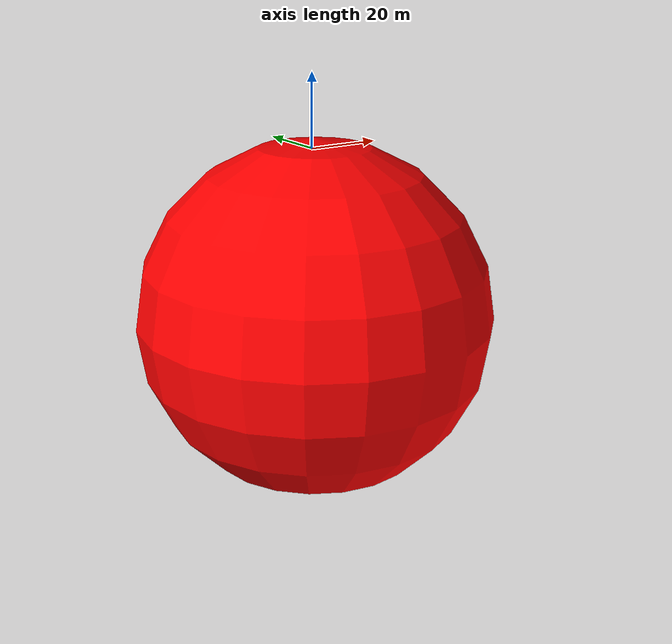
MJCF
<mujoco model="random_box_terrain">
    <compiler angle="degree" coordinate="local"/>
    <option timestep="0.01" gravity="0 0 -9.81" integrator="RK4"/>

    <asset>
        <texture type="2d" name="Plastic010_color"      file="../../textures/Plastic010_2K-PNG/Plastic010_2K-PNG_Color.png"/>
        <texture type="2d" name="Plastic010_roughness"  file="../../textures/Plastic010_2K-PNG/Plastic010_2K-PNG_Roughness.png"/>
        <texture type="2d" name="Plastic010_normal"     file="../../textures/Plastic010_2K-PNG/Plastic010_2K-PNG_NormalDX.png"/>

        <material name="pbr_plastic_gray" metallic ="0.05" roughness="1.0" rgba="1 0 0 1.0">
        <rgb        texture="Plastic010_color"/>
        <normal     texture="Plastic010_normal"/>
        <roughness  texture="Plastic010_roughness"/>
        </material>
    </asset>

    <worldbody>
        <body name="terrain" pos="2.5 2.5 -48" >
<geom type="sphere" pos="0.0 0.0 0" size="50.0 0 0" euler="0 0 0"   material="pbr_plastic_gray"/>

        </body>
    </worldbody>

    <actuator>
        <!-- 在这里你可以定义一些控制器 -->
    </actuator>

</mujoco>
